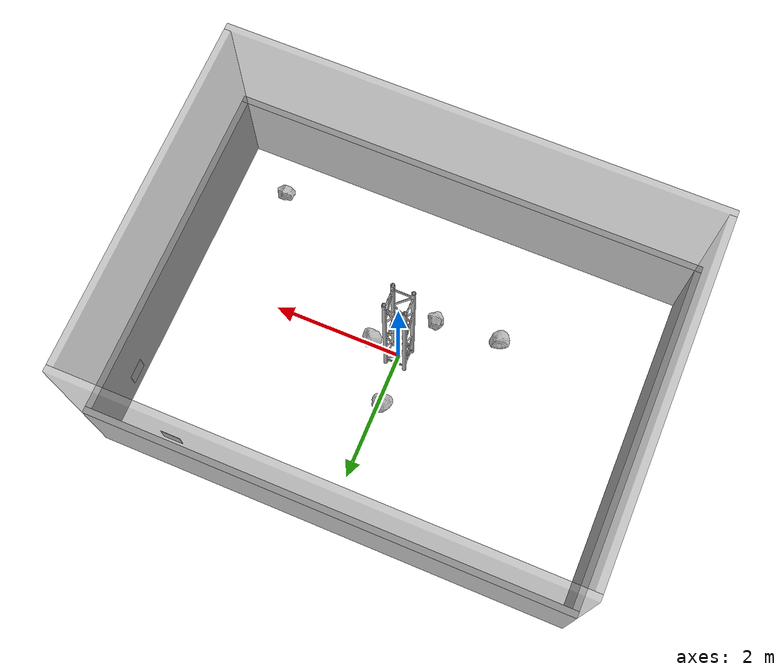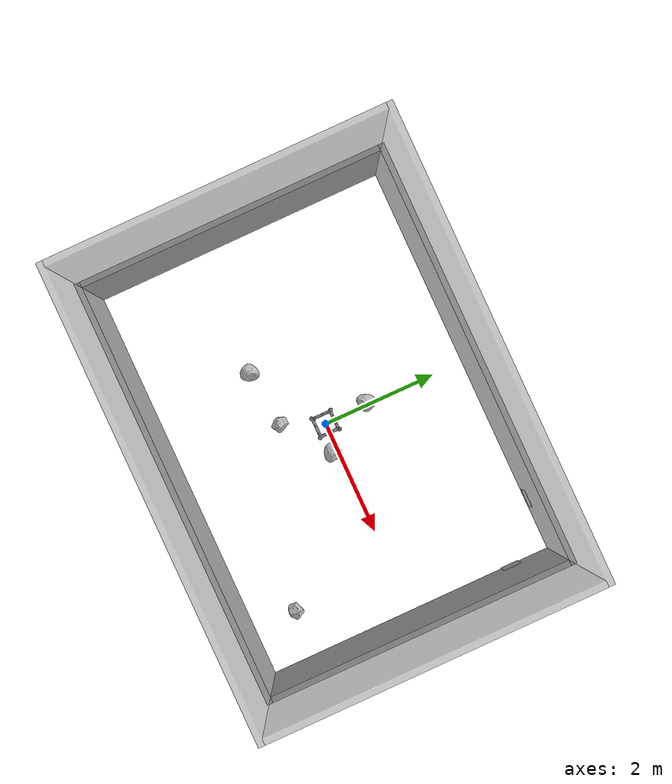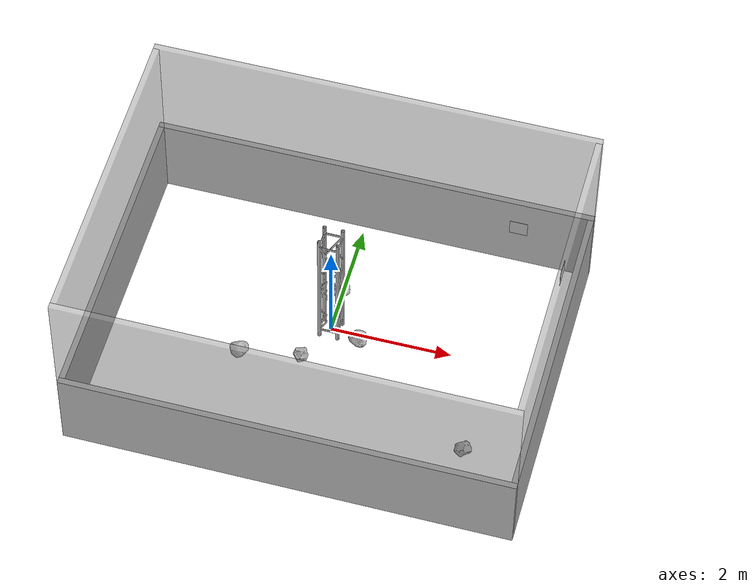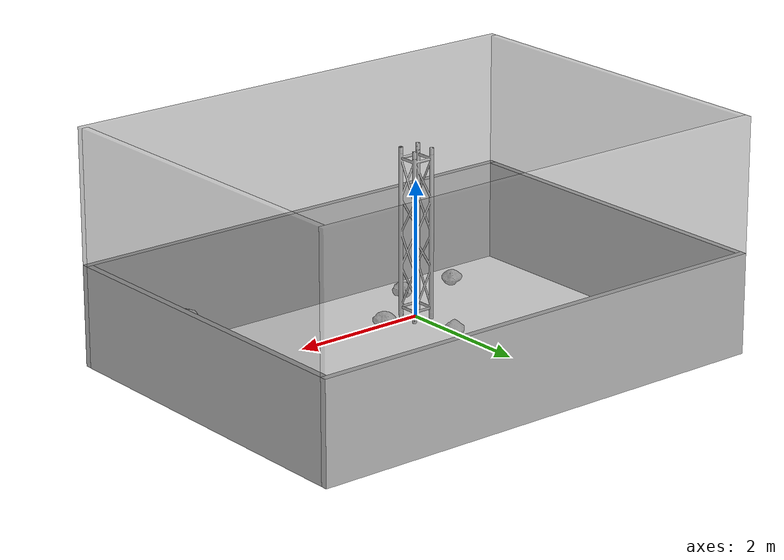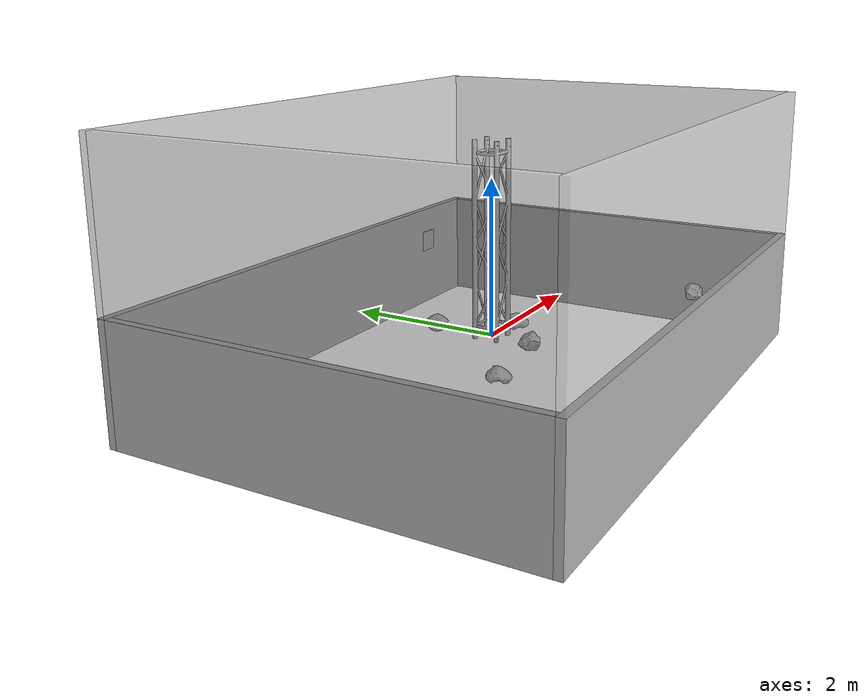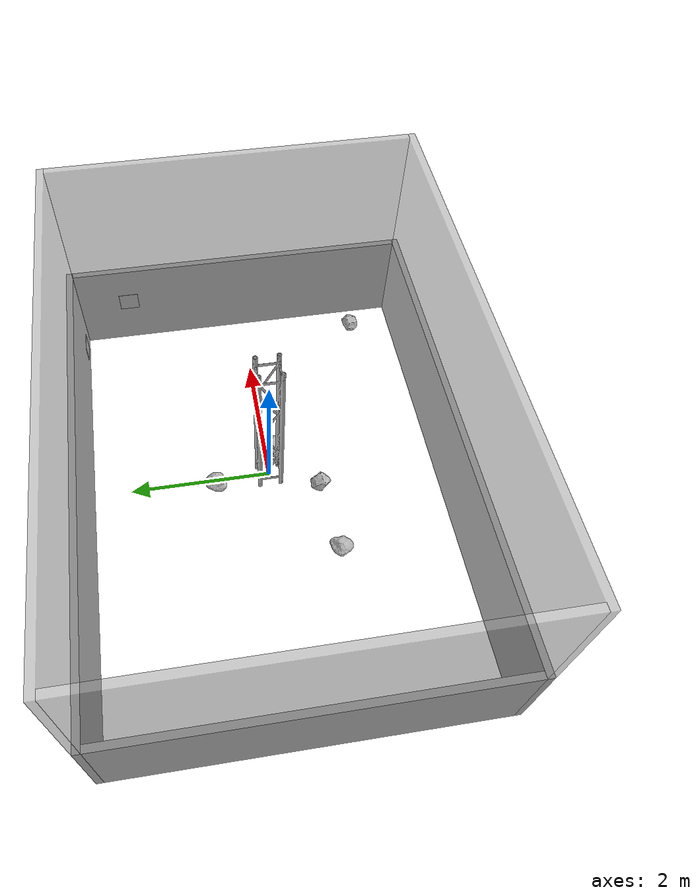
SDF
<sdf version="1.7">
 <world name="default">
  <light name="sun" type="directional">
   <pose>0 0 10 0 0 0</pose>
   <diffuse>0.4 0.4 0.4 1</diffuse>
   <specular>0.1 0.1 0.1 1</specular>
   <attenuation>
    <range>500</range>
    <constant>0.8</constant>
    <linear>0.02</linear>
    <quadratic>0.001</quadratic>
   </attenuation>
   <direction>-0.5 0.1 -0.9</direction>
  </light>
  <scene><ambient>0.4 0.4 0.4 1</ambient><background>0 0 0 255</background><shadows>1</shadows></scene>
  <physics type="ode">
   <max_step_size>0.001</max_step_size>
   <real_time_factor>1</real_time_factor>
   <real_time_update_rate>1000</real_time_update_rate>
  </physics>
  <gravity>0 0 -9.81</gravity>
  <model name="arena_wall_long">
   <pose>0 -2.68 0.1 0 0 0</pose>
   <static>1</static>
   <link name="arena_wall_long_link">
    <visual name="arena_wall_long"><geometry><box><size>7.42 0.1 1.5</size></box></geometry></visual>
    <collision name="arena_wall_long_collision">
     <geometry><box><size>7.42 0.1 1.5</size></box></geometry>
     <surface><friction><ode><mu>0.3</mu><mu2>0.3</mu2></ode></friction></surface>
    </collision>
   </link>
  </model>
  <model name="arena_wall_long_2">
   <pose>0 2.68 0.1 0 0 0</pose>
   <static>1</static>
   <link name="arena_wall_long_2_link">
    <visual name="arena_wall_long_2"><geometry><box><size>7.42 0.1 1.5</size></box></geometry></visual>
    <collision name="arena_wall_long_2_collision">
     <geometry><box><size>7.42 0.1 1.5</size></box></geometry>
     <surface><friction><ode><mu>0.3</mu><mu2>0.3</mu2></ode></friction></surface>
    </collision>
   </link>
  </model>
  <model name="arena_wall_short">
   <pose>3.66 0 0.1 0 0 0</pose>
   <static>1</static>
   <link name="arena_wall_short_link">
    <visual name="arena_wall_short"><geometry><box><size>0.1 5.26 1.5</size></box></geometry></visual>
    <collision name="arena_wall_short_collision">
     <geometry><box><size>0.1 5.26 1.5</size></box></geometry>
     <surface><friction><ode><mu>0.3</mu><mu2>0.3</mu2></ode></friction></surface>
    </collision>
   </link>
  </model>
  <model name="arena_wall_short_2">
   <pose>-3.66 0 0.1 0 0 0</pose>
   <static>1</static>
   <link name="arena_wall_short_2_link">
    <visual name="arena_wall_short_2"><geometry><box><size>0.1 5.26 1.5</size></box></geometry></visual>
    <collision name="arena_wall_short_2_collision">
     <geometry><box><size>0.1 5.26 1.5</size></box></geometry>
     <surface><friction><ode><mu>0.3</mu><mu2>0.3</mu2></ode></friction></surface>
    </collision>
   </link>
  </model>
  <model name="arena_glass_short">
   <pose>3.66 0 1.85 0 0 0</pose>
   <static>1</static>
   <link name="arena_glass_short_link">
    <visual name="arena_glass_short">
     <geometry><box><size>0.1 5.26 2.0</size></box></geometry>
     <material>
      <script><name>Gazebo/GreyTransparent</name><uri>file://media/materials/scripts/gazebo.material</uri></script>
     </material>
    </visual>
    <collision name="arena_glass_short_collision">
     <geometry><box><size>0.1 5.26 2.0</size></box></geometry>
     <surface><friction><ode><mu>0.3</mu><mu2>0.3</mu2></ode></friction></surface>
    </collision>
   </link>
  </model>
  <model name="arena_glass_short_2">
   <pose>-3.66 0 1.85 0 0 0</pose>
   <static>1</static>
   <link name="arena_glass_short_2_link">
    <visual name="arena_glass_short_2">
     <geometry><box><size>0.1 5.26 2.0</size></box></geometry>
     <material>
      <script><name>Gazebo/GreyTransparent</name><uri>file://media/materials/scripts/gazebo.material</uri></script>
     </material>
    </visual>
    <collision name="arena_glass_short_2_collision">
     <geometry><box><size>0.1 5.26 2.0</size></box></geometry>
     <surface><friction><ode><mu>0.3</mu><mu2>0.3</mu2></ode></friction></surface>
    </collision>
   </link>
  </model>
  <model name="arena_glass_long">
   <pose>0 2.68 1.85 0 0 0</pose>
   <static>1</static>
   <link name="arena_glass_long_link">
    <visual name="arena_glass_long">
     <geometry><box><size>7.42 0.1 2</size></box></geometry>
     <material>
      <script><name>Gazebo/GreyTransparent</name><uri>file://media/materials/scripts/gazebo.material</uri></script>
     </material>
    </visual>
    <collision name="arena_glass_long_collision">
     <geometry><box><size>7.42 0.1 2</size></box></geometry>
     <surface><friction><ode><mu>0.3</mu><mu2>0.3</mu2></ode></friction></surface>
    </collision>
   </link>
  </model>
  <model name="arena_glass_long_2">
   <pose>0 -2.68 1.85 0 0 0</pose>
   <static>1</static>
   <link name="arena_glass_long_2_link">
    <visual name="arena_wall_short_2">
     <geometry><box><size>7.42 0.1 2</size></box></geometry>
     <material>
      <script><name>Gazebo/GreyTransparent</name><uri>file://media/materials/scripts/gazebo.material</uri></script>
     </material>
    </visual>
    <collision name="arena_wall_short_2_collision">
     <geometry><box><size>7.42 0.1 2</size></box></geometry>
     <surface><friction><ode><mu>0.3</mu><mu2>0.3</mu2></ode></friction></surface>
    </collision>
   </link>
  </model>
  <model name="column">
   <pose>0 0 -0.02 0 0 0</pose>
   <static>1</static>
   <link name="column_link">
    <visual name="column">
     <geometry><mesh><uri>model://column/column.stl</uri><scale>2.5 2.5 2.5</scale></mesh></geometry>
    </visual>
    <collision name="column_collision">
     <geometry><mesh><uri>model://column/column.stl</uri><scale>2.5 2.5 2.5</scale></mesh></geometry>
     <surface><friction><ode><mu>0.3</mu><mu2>0.3</mu2></ode></friction></surface>
    </collision>
   </link>
  </model>
  <model name="rock_rough">
   <pose>-0.27549 -0.706665 0.05 0 0 -2.17367</pose>
   <self_collide>1</self_collide>
   <static>0</static>
   <link name="rock_rough_link">
    <inertial><mass>5.0</mass><inertia><ixx>3.0</ixx><iyy>3.0</iyy><izz>3.0</izz></inertia></inertial>
    <velocity_decay><linear>0.39</linear><angular>0.9</angular></velocity_decay>
    <visual name="rock_rough">
     <geometry><mesh><uri>model://rock_rough/rock_rough.stl</uri><scale>1 1 1</scale></mesh></geometry>
     <material>
      <script>
       <uri>model://rock_rough/materials/scripts</uri>
       <uri>model://rock_rough/materials/textures</uri>
       <name>rock_rough</name>
      </script>
     </material>
    </visual>
    <collision name="rock_rough_collision">
     <geometry><mesh><uri>model://rock_rough/rock_rough.stl</uri><scale>1 1 1</scale></mesh></geometry>
     <surface><friction><ode><mu>1.5</mu><mu2>1.5</mu2></ode></friction></surface>
    </collision>
   </link>
  </model>
  <model name="rock_rough_2">
   <pose>2.65456 -1.72569 0.05 0 0 -0.62</pose>
   <self_collide>1</self_collide>
   <static>0</static>
   <link name="rock_rough_2_link">
    <inertial><mass>5.0</mass><inertia><ixx>3.0</ixx><iyy>3.0</iyy><izz>3.0</izz></inertia></inertial>
    <velocity_decay><linear>0.39</linear><angular>0.9</angular></velocity_decay>
    <visual name="rock_rough_2">
     <geometry><mesh><uri>model://rock_rough/rock_rough.stl</uri><scale>1 1 1</scale></mesh></geometry>
     <material>
      <script>
       <uri>model://rock_rough/materials/scripts</uri>
       <uri>model://rock_rough/materials/textures</uri>
       <name>rock_rough</name>
      </script>
     </material>
    </visual>
    <collision name="rock_rough_2_collision">
     <geometry><mesh><uri>model://rock_rough/rock_rough.stl</uri><scale>1 1 1</scale></mesh></geometry>
    </collision>
   </link>
  </model>
  <model name="rock_round">
   <pose>0.486992 -0.098022 0.05 0 0 0.846674</pose>
   <self_collide>1</self_collide>
   <static>0</static>
   <link name="rock_round_link">
    <inertial><mass>5.0</mass><inertia><ixx>3.0</ixx><iyy>3.0</iyy><izz>3.0</izz></inertia></inertial>
    <velocity_decay><linear>0.3</linear><angular>0.3</angular></velocity_decay>
    <visual name="rock_round">
     <geometry><mesh><uri>model://rock_round/rock_round.stl</uri><scale>1 1 1</scale></mesh></geometry>
     <material>
      <script>
       <uri>model://rock_round/materials/scripts</uri>
       <uri>model://rock_round/materials/textures</uri>
       <name>rock_round</name>
      </script>
     </material>
    </visual>
    <collision name="rock_round_collision">
     <geometry><mesh><uri>model://rock_round/rock_round.stl</uri><scale>1 1 1</scale></mesh></geometry>
    </collision>
   </link>
  </model>
  <model name="rock_round_2">
   <pose>-0.046244 0.773163 0.05 0 0 -0.80</pose>
   <self_collide>1</self_collide>
   <static>0</static>
   <link name="rock_round_2_link">
    <inertial><mass>5.0</mass><inertia><ixx>3.0</ixx><iyy>3.0</iyy><izz>3.0</izz></inertia></inertial>
    <velocity_decay><linear>0.39</linear><angular>0.9</angular></velocity_decay>
    <visual name="rock_round_2">
     <geometry><mesh><uri>model://rock_round/rock_round.stl</uri><scale>1 1 1</scale></mesh></geometry>
     <material>
      <script>
       <uri>model://rock_round/materials/scripts</uri>
       <uri>model://rock_round/materials/textures</uri>
       <name>rock_round</name>
      </script>
     </material>
    </visual>
    <collision name="rock_round_2_collision">
     <geometry><mesh><uri>model://rock_round/rock_round.stl</uri><scale>1 1 1</scale></mesh></geometry>
    </collision>
   </link>
  </model>
  <model name="rock_round_3">
   <pose>-1.31619 -0.801557 0.05 0 0 2.5</pose>
   <self_collide>1</self_collide>
   <static>0</static>
   <link name="rock_round_3_link">
    <inertial><mass>5.0</mass><inertia><ixx>3.0</ixx><iyy>3.0</iyy><izz>3.0</izz></inertia></inertial>
    <velocity_decay><linear>0.39</linear><angular>0.9</angular></velocity_decay>
    <visual name="rock_round_3">
     <geometry><mesh><uri>model://rock_round/rock_round.stl</uri><scale>1 1 1</scale></mesh></geometry>
     <material>
      <script>
       <uri>model://rock_round/materials/scripts</uri>
       <uri>model://rock_round/materials/textures</uri>
       <name>rock_round</name>
      </script>
     </material>
    </visual>
    <collision name="rock_round_3_collision">
     <geometry><mesh><uri>model://rock_round/rock_round.stl</uri><scale>1 1 1</scale></mesh></geometry>
    </collision>
   </link>
  </model>
  <model name="tag_36_11_00007">
   <pose>3.4 1.8 0.4 0 -1.58 0</pose>
   <static>1</static>
   <link name="link">
    <visual name="tag_36_11_00007">
     <geometry><box><size>0.3 0.3 0.005</size></box></geometry>
     <material>
      <script>
       <uri>model://apriltags/tag_36_11_00007/materials/scripts</uri>
       <uri>model://apriltags/tag_36_11_00007/materials/textures</uri>
       <name>tag_36_11_00007</name>
      </script>
     </material>
    </visual>
    <collision name="tag_36_11_00007_collision">
     <geometry><box><size>0.3 0.3 0.005</size></box></geometry>
    </collision>
   </link>
  </model>
  <model name="tag_36_11_00011">
   <pose>2.5 2.5 0.4 1.58 0 0</pose>
   <static>1</static>
   <link name="link">
    <visual name="tag_36_11_00011">
     <geometry><box><size>0.3 0.3 0.005</size></box></geometry>
     <material>
      <script>
       <uri>model://apriltags/tag_36_11_00011/materials/scripts</uri>
       <uri>model://apriltags/tag_36_11_00011/materials/textures</uri>
       <name>tag_36_11_00011</name>
      </script>
     </material>
    </visual>
    <collision name="tag_36_11_00011_collision">
     <geometry><box><size>0.3 0.3 0.005</size></box></geometry>
    </collision>
   </link>
  </model>
 </world>
</sdf>
